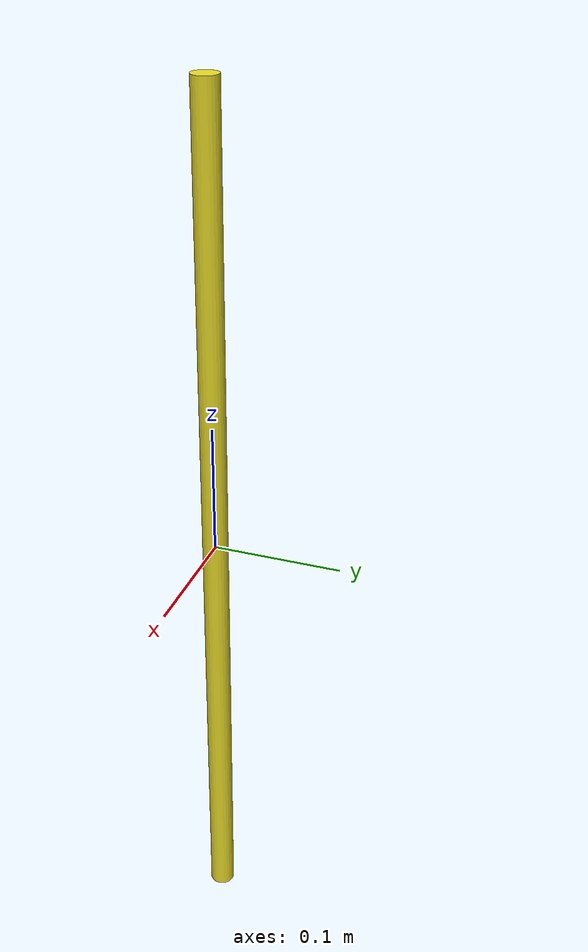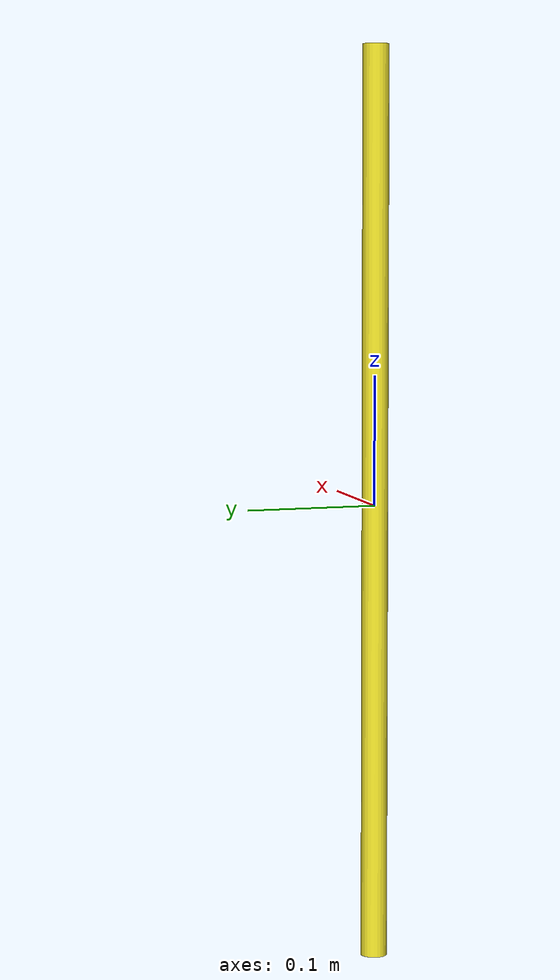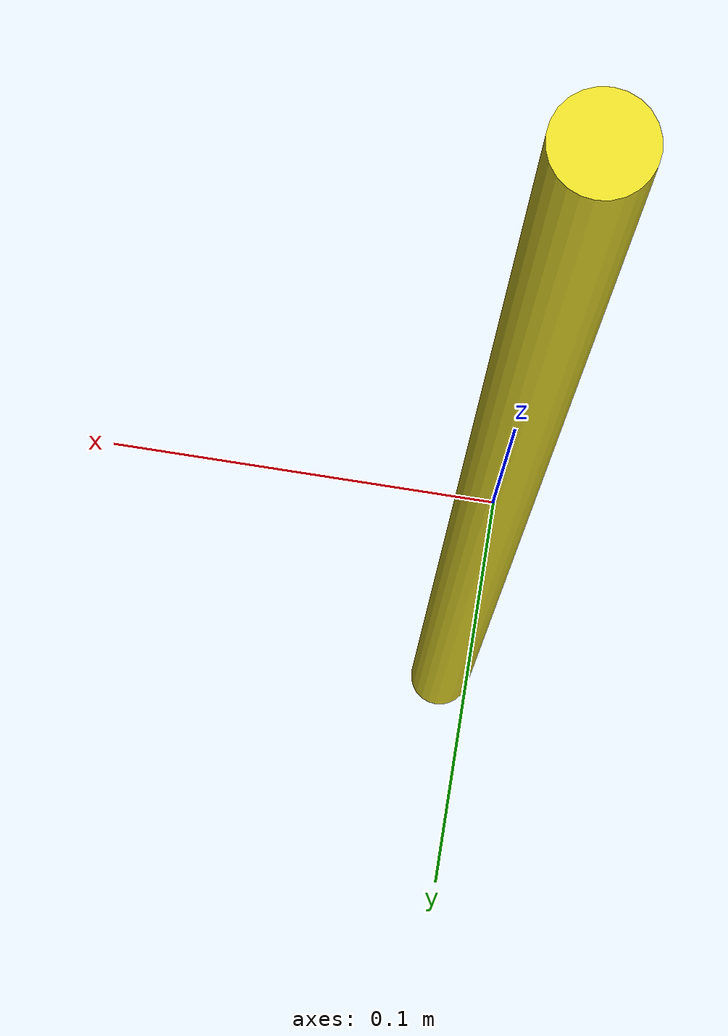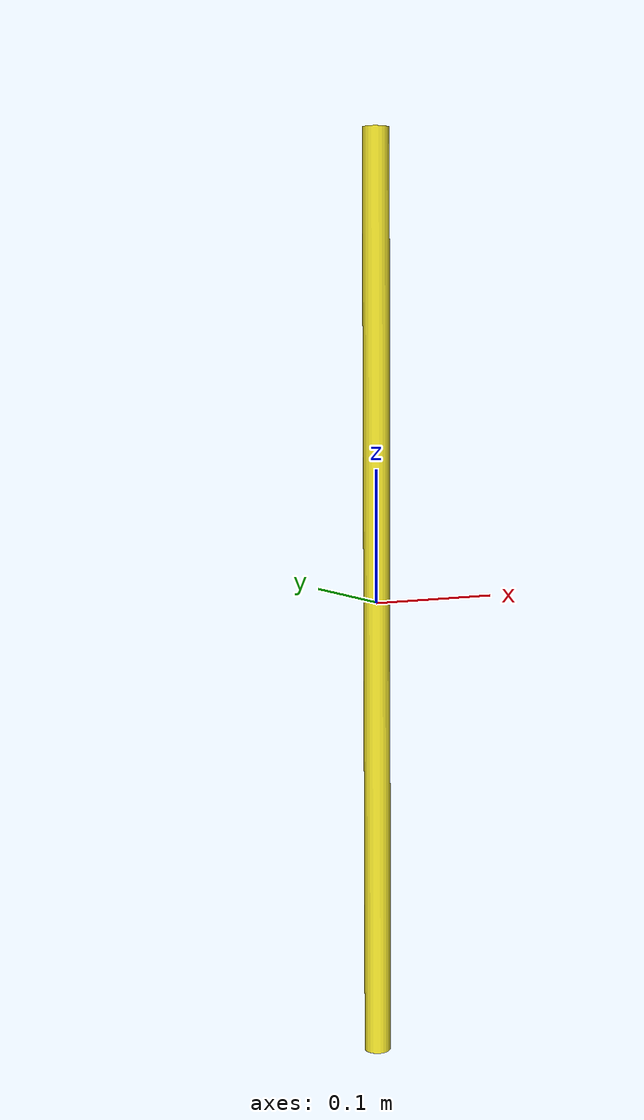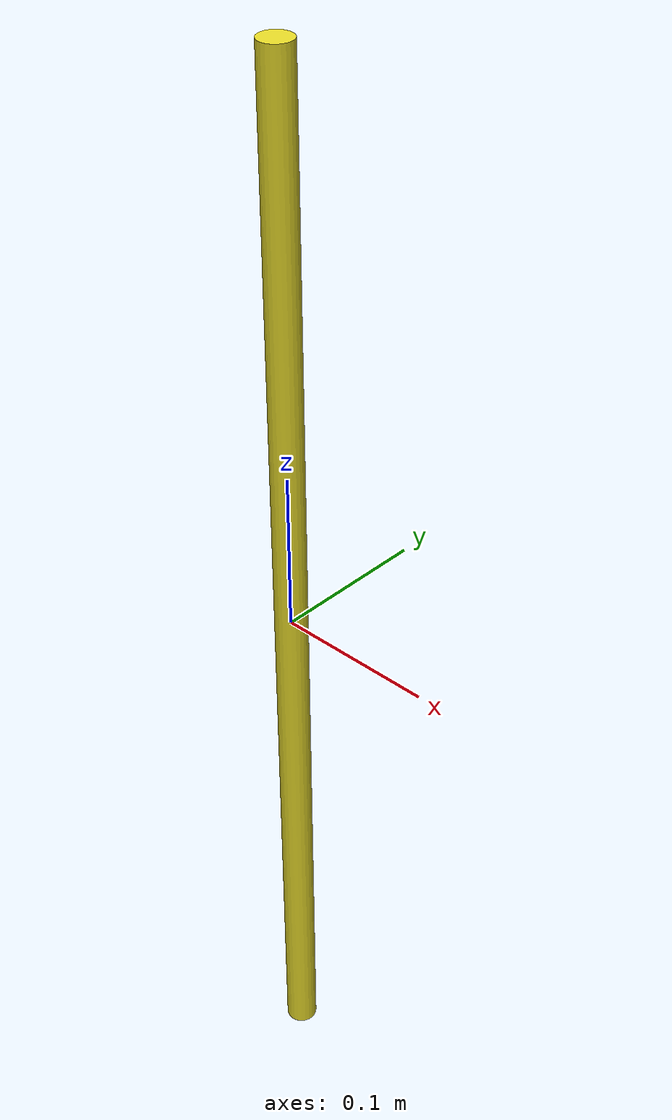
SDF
<?xml version="1.0" ?>

<sdf version="1.5">
  <model name="pendulum_pole">
    <link name="pole">
      <pose>0 0 0 0 0 0</pose>
      <inertial>
        <pose>0 0 0 0 0 0</pose>
        <mass>0.08</mass>
        <inertia>
          <ixx>0.0032686666666666662</ixx>
          <ixy>0</ixy>
          <ixz>0</ixz>
          <iyy>0.0032686666666666662</iyy>
          <iyz>0</iyz>
          <izz>4.000000000000001e-06</izz>
        </inertia>
      </inertial>
      <collision name="pole_collision">
        <pose>0 0 0 0 0 0</pose>
        <geometry>
          <cylinder>
            <length>0.7</length>
            <radius>0.01</radius>
          </cylinder>
        </geometry>
        <surface>
          <contact>
            <ode>
              <max_vel>100.0</max_vel>
              <min_depth>0.001</min_depth>
            </ode>
          </contact>
          <friction>
            <ode>
              <mu>1.0</mu>
              <mu2>1.0</mu2>
            </ode>
          </friction>
        </surface>
      </collision>
      <visual name="pole_visual">
        <pose>0 0 0 0 0 0</pose>
        <geometry>
          <cylinder>
            <length>0.7</length>
            <radius>0.01</radius>
          </cylinder>
        </geometry>
        <material>
          <script>
            <name>Gazebo/Yellow</name>
          </script>
        </material>
      </visual>
    </link>

    <plugin name="pole_hold_release_plugin" filename="libPoleHoldReleasePlugin.so">
      <linkName>pole</linkName>
      <unlockTopic>/pendulum_pole/unlock</unlockTopic>
      <setPositionTopic>/pendulum_pole/set_position_ned</setPositionTopic>
      <posP>80</posP>
      <posD>18</posD>
      <rotP>2</rotP>
      <rotD>0.4</rotD>
      <maxForce>200</maxForce>
      <maxTorque>20</maxTorque>
    </plugin>

    <plugin name="pole_mavlink_pose_plugin" filename="libPoleMavlinkPosePlugin.so">
      <linkName>pole</linkName>
      <tcpAddr>127.0.0.1</tcpAddr>
      <tcpPort>14557</tcpPort>
      <sendRateHz>200</sendRateHz>
      <rosTargetTopic>/pendulum_pole/set_position_ned</rosTargetTopic>
      <rosFrameId>local_ned</rosFrameId>
      <systemId>42</systemId>
      <componentId>191</componentId>
    </plugin>
  </model>
</sdf>
